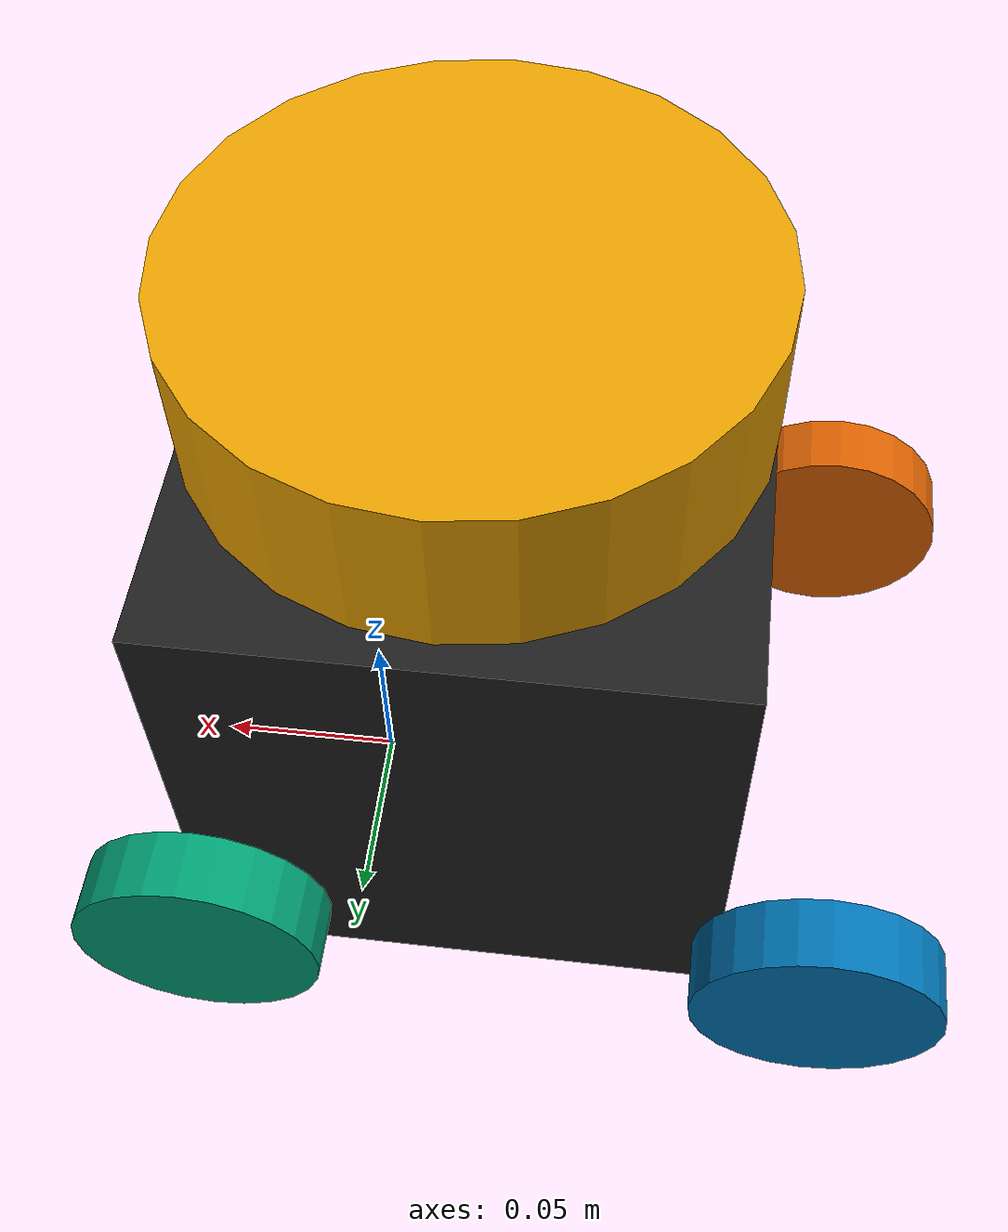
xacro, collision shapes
<?xml version="1.0" ?>
<robot name="turtlebot3_burger" xmlns:xacro="http://ros.org/wiki/xacro">
  <xacro:include filename="$(find turtlebot3_description)/urdf/common_properties.xacro"/>
  <xacro:include filename="$(find turtlebot3_description)/urdf/turtlebot3_burger.gazebo.xacro"/>

  <link name="base_footprint"/>

  <joint name="base_joint" type="fixed">
    <parent link="base_footprint"/>
    <child link="base_link"/>
    <origin xyz="0.0 0.0 0.010" rpy="0 0 0"/>
  </joint>

  <link name="base_link">
    <visual>
      <origin xyz="-0.032 0 0.0" rpy="0 0 0"/>
      <geometry>
        <mesh filename="package://turtlebot3_description/meshes/bases/burger_base.stl" scale="0.001 0.001 0.001"/>
      </geometry>
      <material name="light_black"/>
    </visual>

    <collision>
      <origin xyz="-0.032 0 0.070" rpy="0 0 0"/>
      <geometry>
        <box size="0.140 0.140 0.140"/>
      </geometry>
    </collision>

    <inertial>
      <origin xyz="-0.032 0 0" rpy="0 0 0"/>
      <mass value="1"/>
      <inertia ixx="0.01" ixy="0.0" ixz="0.0"
               iyy="0.01" iyz="0.0"
               izz="0.01" />
    </inertial>
  </link>

  <joint name="wheel_left_joint" type="continuous">
    <parent link="base_link"/>
    <child link="wheel_left_link"/>
    <origin xyz="0.035 0.08 0.023" rpy="${-M_PI*0.5} 0 0"/> <!-- origin xyz="0.115 0.08 0.023" -->
    <axis xyz="0 0 1"/>
  </joint>

  <link name="wheel_left_link">
    <visual>
      <origin xyz="0 0 0" rpy="${M_PI*0.5} 0 0"/>
      <geometry>
        <mesh filename="package://turtlebot3_description/meshes/wheels/left_tire.stl" scale="0.001 0.001 0.001"/>
      </geometry>
      <material name="dark"/>
    </visual>

    <collision>
      <origin xyz="0 0 0" rpy="0 0 0"/>
      <geometry>
        <cylinder length="0.018" radius="0.033"/>
      </geometry>
    </collision>

    <inertial>
      <origin xyz="0 0 0" />
      <mass value="0.01" />
      <inertia ixx="0.001" ixy="0.0" ixz="0.0"
               iyy="0.001" iyz="0.0"
               izz="0.001" />
    </inertial>
  </link>

  <joint name="wheel_right_joint" type="continuous">
    <parent link="base_link"/>
    <child link="wheel_right_link"/>
    <origin xyz="0.035 -0.08 0.023" rpy="${-M_PI*0.5} 0 0"/> <!-- origin xyz="0.115 -0.08 0.023" -->
    <axis xyz="0 0 1"/>
  </joint>

  <link name="wheel_right_link">
    <visual>
      <origin xyz="0 0 0" rpy="${M_PI*0.5} 0 0"/>
      <geometry>
        <mesh filename="package://turtlebot3_description/meshes/wheels/right_tire.stl" scale="0.001 0.001 0.001"/>
      </geometry>
      <material name="dark"/>
    </visual>

    <collision>
      <origin xyz="0 0 0" rpy="0 0 0"/>
      <geometry>
        <cylinder length="0.018" radius="0.033"/>
      </geometry>
    </collision>

    <inertial>
      <origin xyz="0 0 0" />
      <mass value="0.01" />
      <inertia ixx="0.001" ixy="0.0" ixz="0.0"
               iyy="0.001" iyz="0.0"
               izz="0.001" />
    </inertial>
  </link>

<!-- Added in lines below-->

  <joint name="wheel_left_joint_rear" type="continuous">
    <parent link="base_link"/>
    <child link="wheel_left_link_rear"/>
    <origin xyz="-0.128 0.08 0.023" rpy="${-M_PI*0.5} 0 0"/>
    <axis xyz="0 0 1"/>
  </joint>

  <link name="wheel_left_link_rear">
    <visual>
      <origin xyz="0 0 0" rpy="${M_PI*0.5} 0 0"/>
      <geometry>
        <mesh filename="package://turtlebot3_description/meshes/wheels/left_tire.stl" scale="0.001 0.001 0.001"/>
      </geometry>
      <material name="dark"/>
    </visual>

    <collision>
      <origin xyz="0 0 0" rpy="0 0 0"/>
      <geometry>
        <cylinder length="0.018" radius="0.033"/>
      </geometry>
    </collision>

    <inertial>
      <origin xyz="0 0 0" />
      <mass value="0.01" />
      <inertia ixx="0.001" ixy="0.0" ixz="0.0"
               iyy="0.001" iyz="0.0"
               izz="0.001" />
    </inertial>
  </link>

  <joint name="wheel_right_joint_rear" type="continuous">
    <parent link="base_link"/>
    <child link="wheel_right_link_rear"/>
    <origin xyz="-0.128 -0.08 0.023" rpy="${-M_PI*0.5} 0 0"/>
    <axis xyz="0 0 1"/>
  </joint>

  <link name="wheel_right_link_rear">
    <visual>
      <origin xyz="0 0 0" rpy="${M_PI*0.5} 0 0"/>
      <geometry>
        <mesh filename="package://turtlebot3_description/meshes/wheels/right_tire.stl" scale="0.001 0.001 0.001"/>
      </geometry>
      <material name="dark"/>
    </visual>

    <collision>
      <origin xyz="0 0 0" rpy="0 0 0"/>
      <geometry>
        <cylinder length="0.018" radius="0.033"/>
      </geometry>
    </collision>

    <inertial>
      <origin xyz="0 0 0" />
      <mass value="0.01" />
      <inertia ixx="0.001" ixy="0.0" ixz="0.0"
               iyy="0.001" iyz="0.0"
               izz="0.001" />
    </inertial>
  </link>

<!-- Added in lines above-->

  <joint name="caster_back_joint" type="fixed">
    <parent link="base_link"/>
    <child link="caster_back_link"/>
    <origin xyz="-0.081 0 -0.004" rpy="${-M_PI*0.5} 0 0"/>
  </joint>

  <link name="caster_back_link">
    <collision>
      <origin xyz="0 0 0" rpy="0 0 0"/>
      <geometry>
        <box size="0.030 0.010 0.020"/>
      </geometry>
    </collision>

    <inertial>
      <origin xyz="0 0 0" />
      <mass value="0.01" />
      <inertia ixx="0.001" ixy="0.0" ixz="0.0"
               iyy="0.001" iyz="0.0"
               izz="0.001" />
    </inertial>
  </link>

  <joint name="imu_joint" type="fixed">
    <parent link="base_link"/>
    <child link="imu_link"/>
    <origin xyz="-0.032 0 0.068" rpy="0 0 0"/>
  </joint>

  <link name="imu_link"/>

  <joint name="scan_joint" type="fixed">
    <parent link="base_link"/>
    <child link="base_scan"/>
    <origin xyz="-0.032 0 0.171" rpy="0 0 0"/>
  </joint>

  <link name="base_scan">
    <visual>
      <origin xyz="0 0 0.0" rpy="0 0 0"/>
      <geometry>
        <mesh filename="package://turtlebot3_description/meshes/sensors/lds.stl" scale="0.001 0.001 0.001"/>
      </geometry>
      <material name="dark"/>
    </visual>

    <collision>
      <origin xyz="0 0 0" rpy="0 0 0"/>
      <geometry>
        <cylinder length="0.0408" radius="0.070"/>
      </geometry>
    </collision>

    <inertial>
      <mass value="0.01" />
      <origin xyz="0 0 0" />
      <inertia ixx="0.001" ixy="0.0" ixz="0.0"
               iyy="0.001" iyz="0.0"
               izz="0.001" />
    </inertial>
  </link>

</robot>
